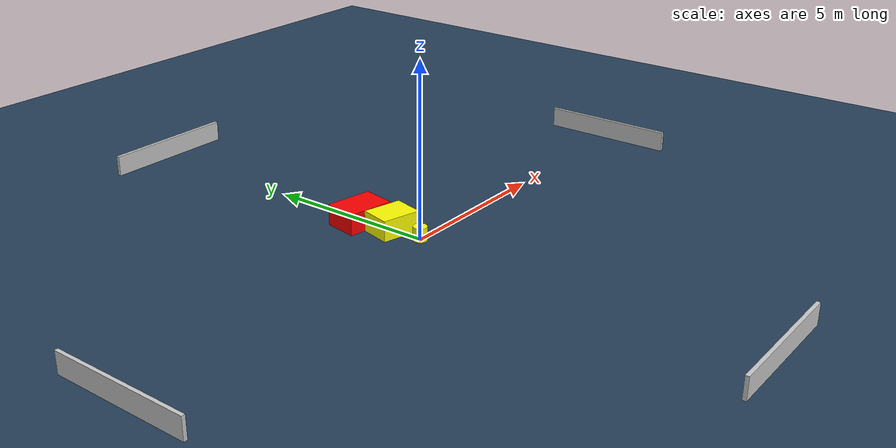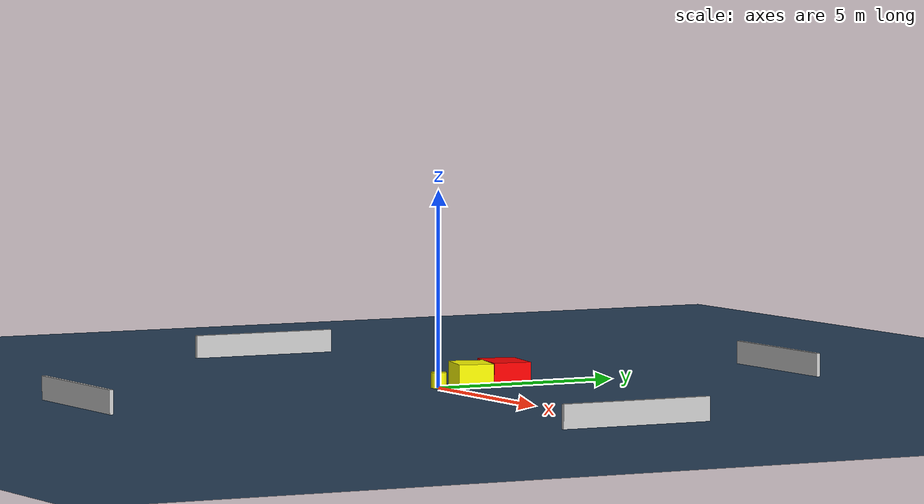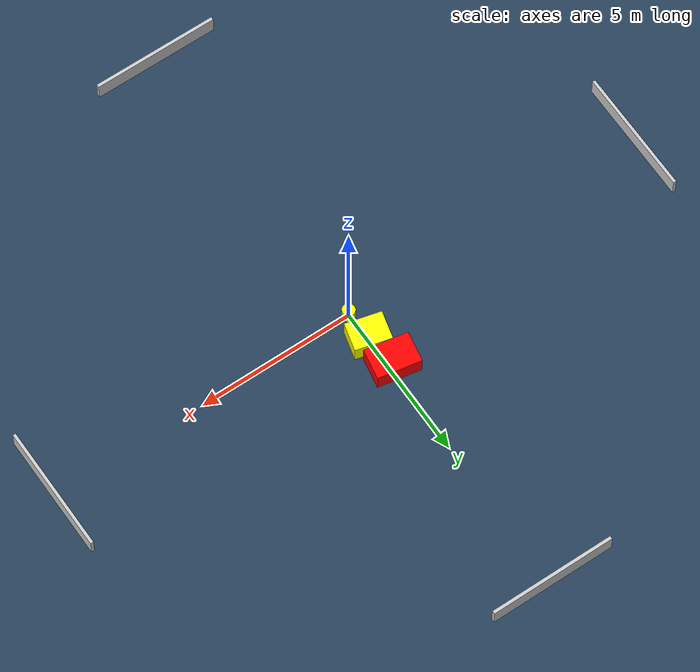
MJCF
<?xml version="1.0" ?>
<mujoco model="generated_environment">
  <option timestep="0.01" integrator="RK4" cone="elliptic"/>
  <default>
    <geom density="1"/>
  </default>
  <asset>
    <texture builtin="gradient" height="3072" name="skybox" rgb1="0.3 0.5 0.7" rgb2="0 0 0" type="skybox" width="512"/>
    <texture builtin="checker" height="300" name="groundplane" rgb1="0.2 0.3 0.4" rgb2="0.1 0.2 0.3" type="2d" width="300"/>
    <material name="groundplane" reflectance="0.2" texrepeat="5 5" texture="groundplane"/>
  </asset>
  <worldbody>
    <light dir="0 0 -1" directional="true" pos="0 0 1.5"/>
    <geom condim="3" friction="0.5 0.005 0.001" material="groundplane" name="floor" pos="0 0 0" size="0 0 0.05" type="plane"/>
    <body name="walls">
      <geom name="wall_1" condim="4" pos="-10.0 0.0 0.3" rgba="0.800000011920929 0.800000011920929 0.800000011920929 1.0" size="0.05 2.0 0.3" type="box"/>
      <geom name="wall_2" condim="4" pos="10.0 0.0 0.3" rgba="0.800000011920929 0.800000011920929 0.800000011920929 1.0" size="0.05 2.0 0.3" type="box"/>
      <geom name="wall_3" condim="4" pos="0.0 -10.0 0.3" rgba="0.800000011920929 0.800000011920929 0.800000011920929 1.0" size="2.0 0.05 0.3" type="box"/>
      <geom name="wall_4" condim="4" pos="0.0 10.0 0.3" rgba="0.800000011920929 0.800000011920929 0.800000011920929 1.0" size="2.0 0.05 0.3" type="box"/>
    </body>
    <body name="robot">
      <joint name="joint_x" type="slide" pos="0 0 0" axis="1 0 0"/>
      <joint name="joint_y" type="slide" pos="0 0 0" axis="0 1 0"/>
      <geom name="robot" type="cylinder" pos="0.0 0.0 0.2" size="0.2 0.2 0.0" mass="5.0" friction="1.0 0.005 0.0001" condim="4" rgba="1.0 1.0 0.0 1.0"/>
    </body>
    <body name="obstacle_1_movable">
      <geom name="obstacle_1_movable" condim="4" pos="-0.031710615692539953 0.945073232970927 0.3" euler="0 0 165.71861598166456" friction="0.0 0.005 0.001" rgba="1.0 1.0 0.0 1.0" size="0.5774946722840497 0.45000346774758415 0.3" type="box" mass="0.1"/>
      <joint type="free"/>
    </body>
    <body name="obstacle_2_static">
      <geom name="obstacle_2_static" condim="4" pos="-0.16873135708520856 1.9675963248001727 0.3" euler="0 0 169.6286748541919" friction="0.0 0.005 0.001" rgba="1.0 0.0 0.0 1.0" size="0.6963364850928719 0.4887439937241632 0.3" type="box"/>
    </body>
  </worldbody>
  <actuator>
    <motor name="actuator_x" joint="joint_x" gear="1" ctrlrange="-1 1"/>
    <motor name="actuator_y" joint="joint_y" gear="1" ctrlrange="-1 1"/>
  </actuator>
</mujoco>
